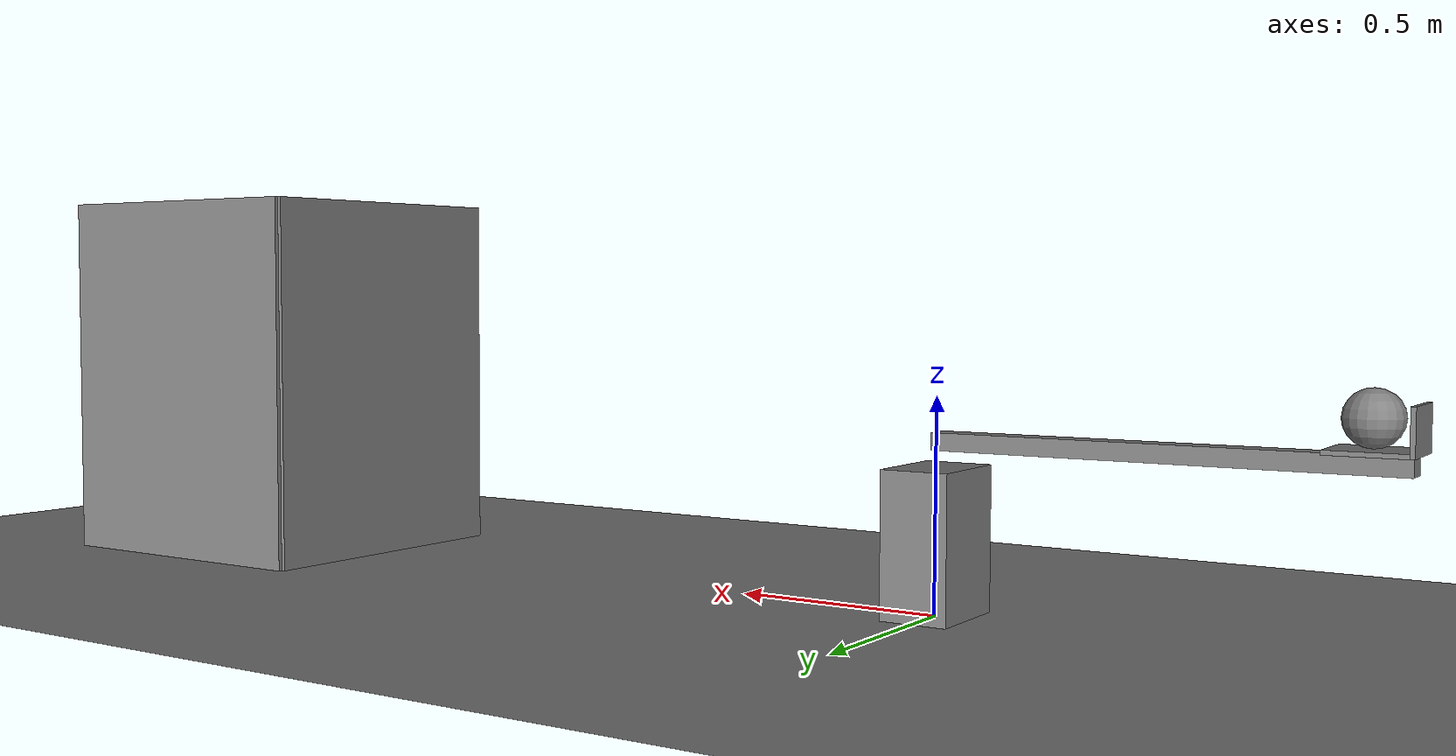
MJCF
<mujoco model="catapult_fixture_corrected">
  <option timestep="0.002"/>
  <worldbody>
    <geom name="floor" type="plane" size="8 8 0.1"/>
    <geom name="catapult_base" type="box" pos="0 0 0.170" size="0.08 0.12 0.170"/>
    <body name="catapult_arm" pos="0 0 0.4">
      <joint name="catapult_hinge" type="hinge" axis="0 1 0" limited="true" range="0 55" stiffness="3.2" springref="150" damping="0.05" armature="0.01" solreflimit="0.005 1" solimplimit="0.99 0.99 0.001"/>
      <geom name="catapult_beam" type="box" pos="-0.500 0 0" size="0.500 0.03 0.02" mass="0.3"/>
      <geom name="catapult_cup_floor" type="box" pos="-0.920 0 0.025" size="0.08 0.08 0.005" mass="0.02"/>
      <geom name="catapult_cup_back" type="box" pos="-1.005 0 0.07" size="0.005 0.08 0.05" mass="0.01"/>
    </body>
    <body name="ball" pos="-0.920 0 0.490">
      <freejoint/>
      <geom name="ball" type="sphere" size="0.06" mass="0.15" condim="6" friction="0.8 0.01 0.004" solref="0.01 1"/>
    </body>
    <body name="bucket" pos="2.080 0 0.490">
      <geom name="bucket_base" type="box" pos="0 0 -0.480" size="0.4 0.4 0.01"/>
      <geom name="bucket_near" type="box" pos="-0.4 0 0" size="0.01 0.4 0.49"/>
      <geom name="bucket_far" type="box" pos="0.4 0 0" size="0.01 0.4 0.49"/>
      <geom name="bucket_left" type="box" pos="0 0.4 0" size="0.4 0.01 0.49"/>
      <geom name="bucket_right" type="box" pos="0 -0.4 0" size="0.4 0.01 0.49"/>
    </body>
  </worldbody>
</mujoco>
